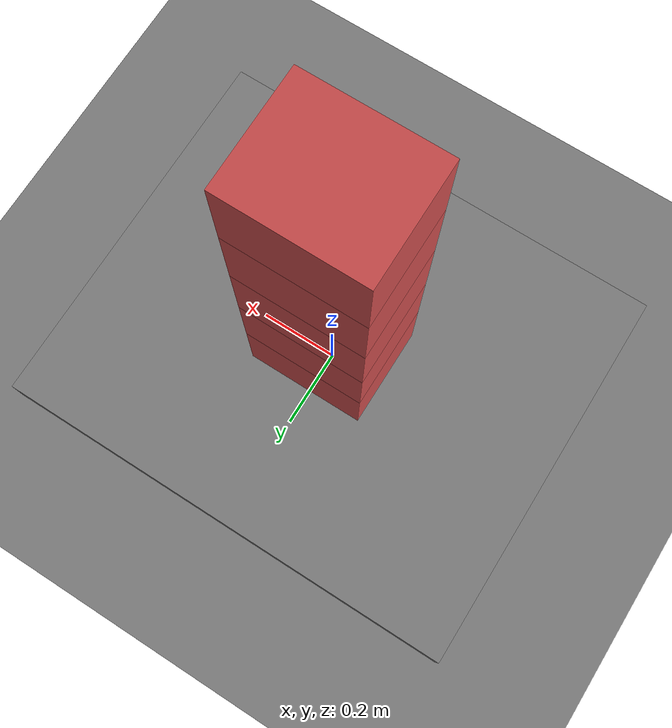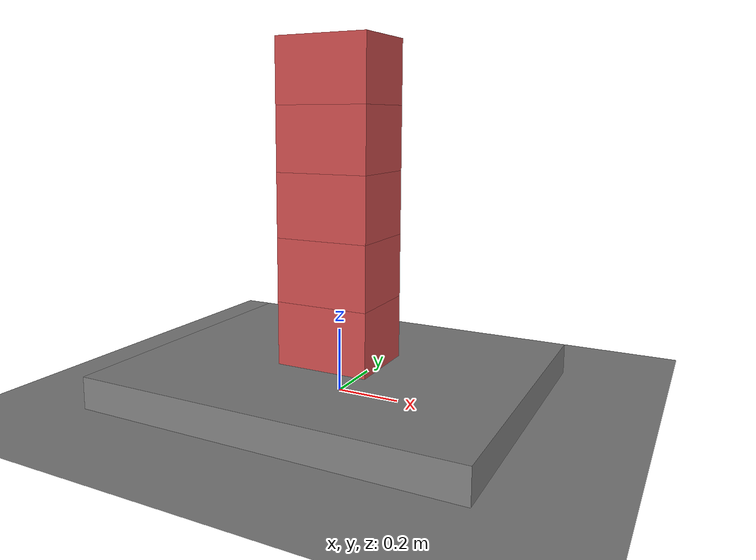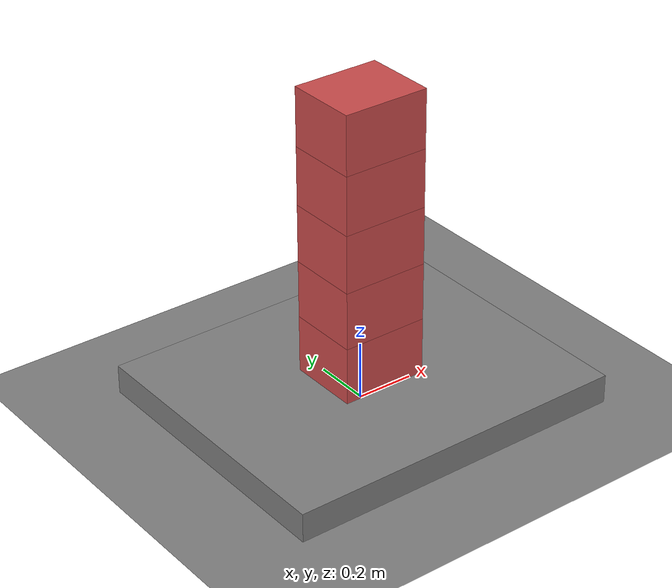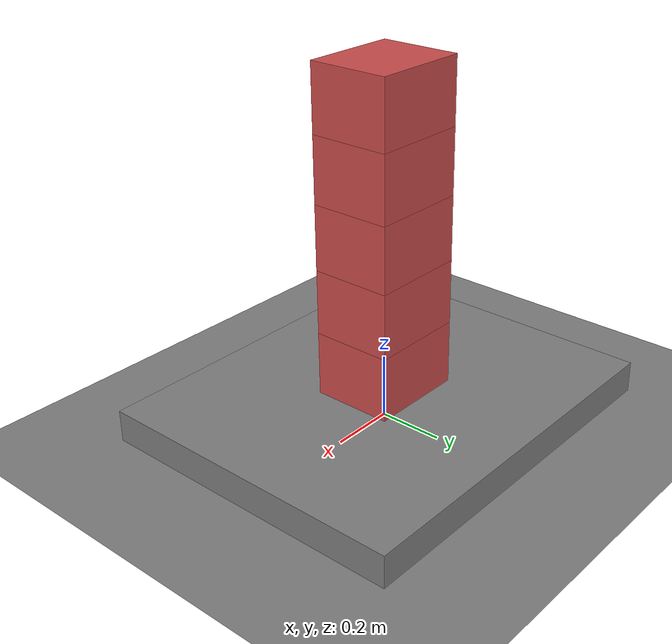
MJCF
<?xml version="1.0" ?>
<mujoco model="pallet_bricks_column">
  <!-- compiler: enable inertia from geometry -->
  <compiler angle="degree" inertiafromgeom="true"/>

  <!-- define brick material -->
  <asset>
    <material name="brick_mat" rgba="0.8 0.3 0.3 1"/>
  </asset>

  <!-- gravity -->
  <option gravity="0 0 -9.81"/>

  <worldbody>
    <!-- ground plane -->
    <geom name="floor" type="plane" pos="0 0 0" size="5 5 0.1"/>

    <!-- sliding pallet -->
    <body name="pallet" pos="0 0 0.05">
      <joint name="pallet_slide" type="slide" axis="1 0 0"/>
      <geom name="pallet_geom"
            type="box"
            size="0.6 0.5 0.05"
            density="500"
            friction="1 0.5 0.5"/>
    </body>

    <!-- single column of 5 dynamic bricks -->
    <!-- brick half-sizes: 0.15, 0.125, 0.10 -->
    <body name="brick_0" pos="0 0 0.20">
      <joint name="brick_0_free" type="free"/>
      <geom type="box"
            size="0.15 0.125 0.10"
            density="13000"
            friction="0.8 0.5 0.5"
            material="brick_mat"/>
    </body>
    <body name="brick_1" pos="0 0 0.40">
      <joint name="brick_1_free" type="free"/>
      <geom type="box"
            size="0.15 0.125 0.10"
            density="13000"
            friction="0.8 0.5 0.5"
            material="brick_mat"/>
    </body>
    <body name="brick_2" pos="0 0 0.60">
      <joint name="brick_2_free" type="free"/>
      <geom type="box"
            size="0.15 0.125 0.10"
            density="13000"
            friction="0.8 0.5 0.5"
            material="brick_mat"/>
    </body>
    <body name="brick_3" pos="0 0 0.80">
      <joint name="brick_3_free" type="free"/>
      <geom type="box"
            size="0.15 0.125 0.10"
            density="13000"
            friction="0.8 0.5 0.5"
            material="brick_mat"/>
    </body>
    <body name="brick_4" pos="0 0 1.00">
      <joint name="brick_4_free" type="free"/>
      <geom type="box"
            size="0.15 0.125 0.10"
            density="13000"
            friction="0.8 0.5 0.5"
            material="brick_mat"/>
    </body>
  </worldbody>

  <!-- actuator drives the pallet sliding joint -->
  <actuator>
    <motor joint="pallet_slide" gear="1"/>
  </actuator>
</mujoco>
